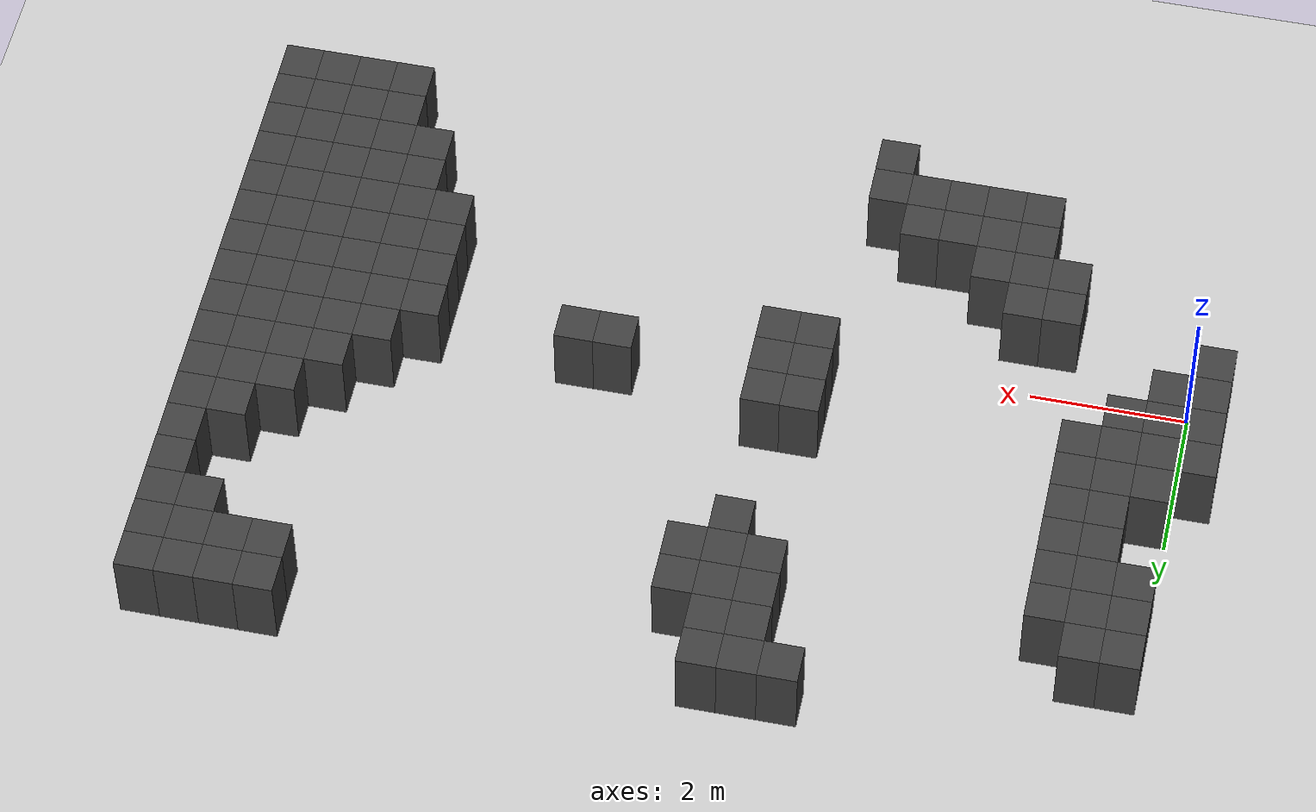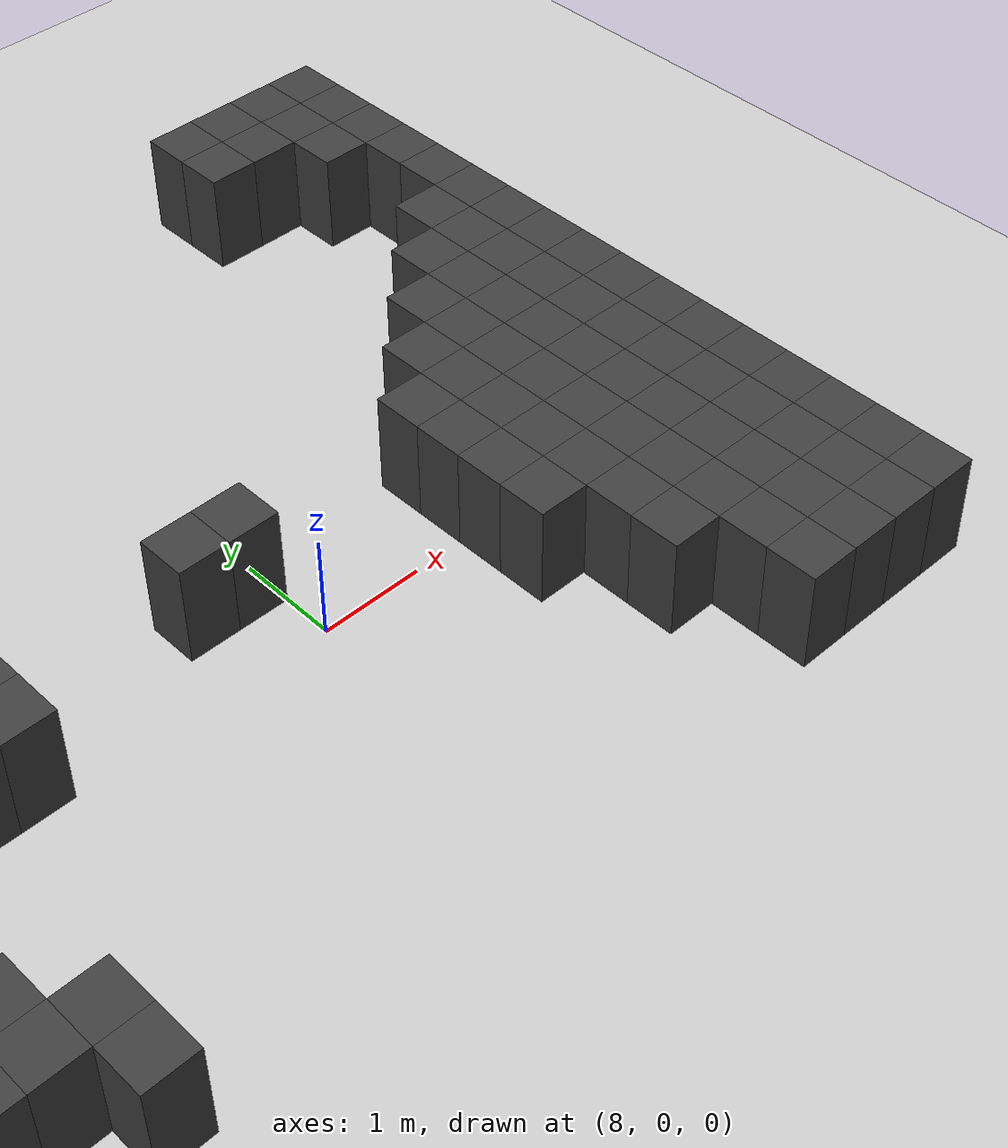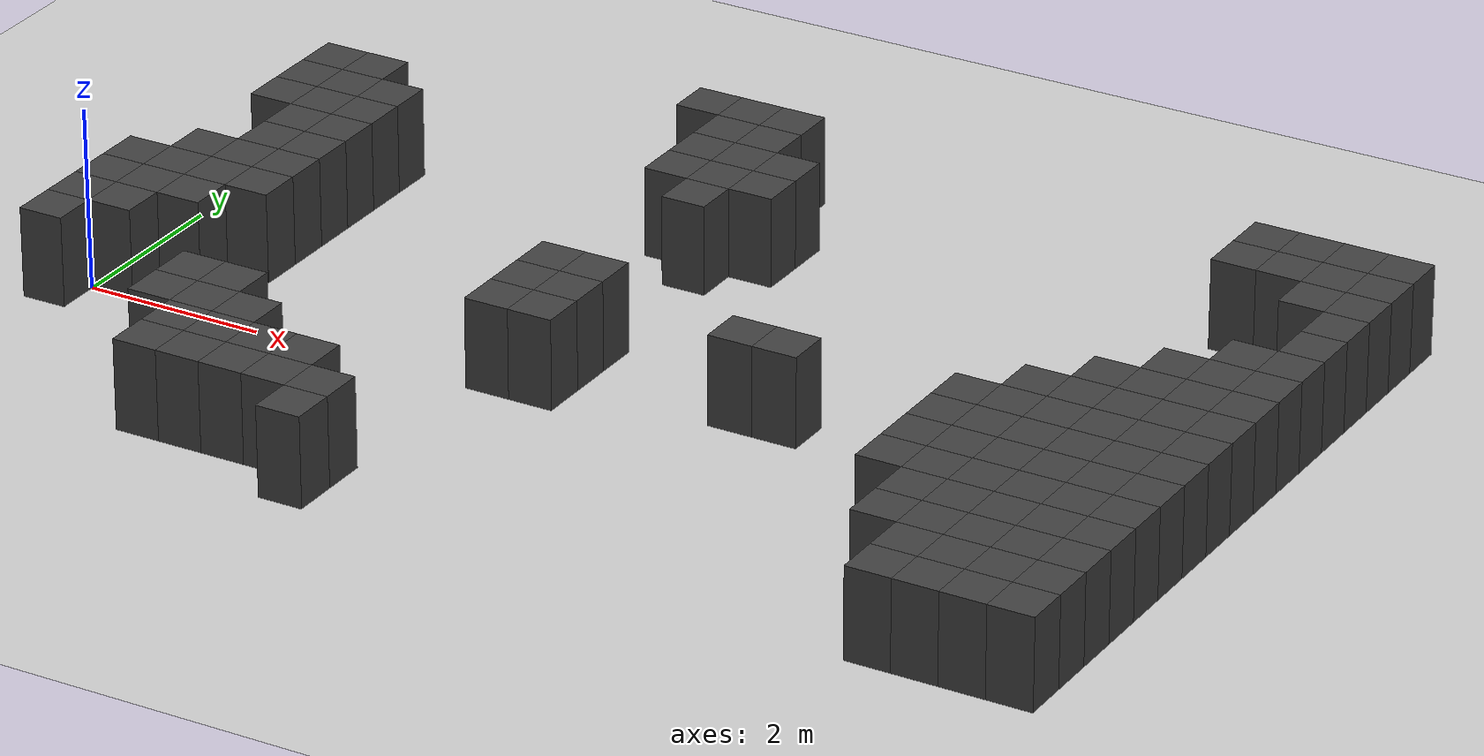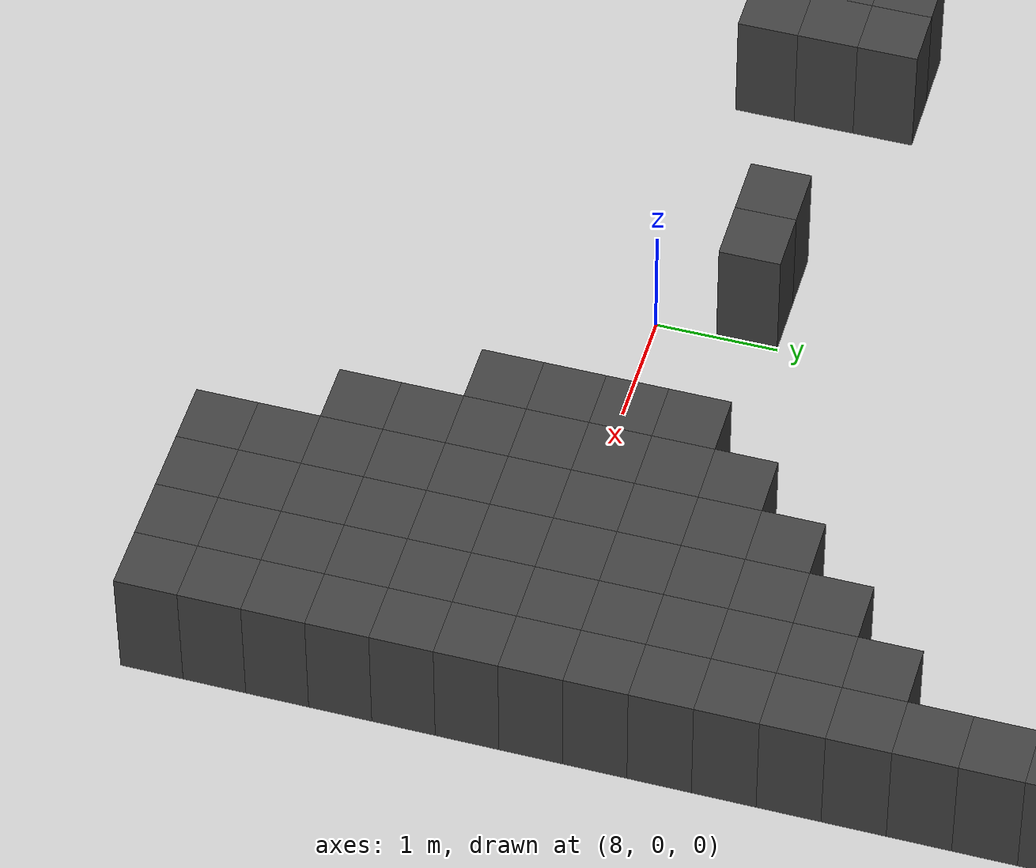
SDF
<sdf version="1.7">
 <world name="map_9544">
  <model name="ground_plane">
   <static>true</static>
   <link name="link">
    <collision name="collision">
     <geometry><plane><normal>0 0 1</normal><size>200 200</size></plane></geometry>
    </collision>
    <visual name="visual">
     <geometry><plane><normal>0 0 1</normal><size>200 200</size></plane></geometry>
     <material><ambient>0.8 0.8 0.8 1</ambient><diffuse>0.8 0.8 0.8 1</diffuse></material>
    </visual>
   </link>
  </model>
  <model name="maze_environment">
   <static>true</static>
   <link name="wall_237">
    <pose>4.250 5.250 0.500 0 0 0</pose>
    <collision name="col"><geometry><box><size>0.5 0.5 1.0</size></box></geometry></collision>
    <visual name="vis">
     <geometry><box><size>0.5 0.5 1.0</size></box></geometry>
     <material><ambient>0.15 0.15 0.15 1</ambient><diffuse>0.25 0.25 0.25 1</diffuse></material>
    </visual>
   </link>
   <link name="wall_238">
    <pose>4.750 5.250 0.500 0 0 0</pose>
    <collision name="col"><geometry><box><size>0.5 0.5 1.0</size></box></geometry></collision>
    <visual name="vis">
     <geometry><box><size>0.5 0.5 1.0</size></box></geometry>
     <material><ambient>0.15 0.15 0.15 1</ambient><diffuse>0.25 0.25 0.25 1</diffuse></material>
    </visual>
   </link>
   <link name="wall_239">
    <pose>5.250 5.250 0.500 0 0 0</pose>
    <collision name="col"><geometry><box><size>0.5 0.5 1.0</size></box></geometry></collision>
    <visual name="vis">
     <geometry><box><size>0.5 0.5 1.0</size></box></geometry>
     <material><ambient>0.15 0.15 0.15 1</ambient><diffuse>0.25 0.25 0.25 1</diffuse></material>
    </visual>
   </link>
   <link name="wall_240">
    <pose>10.750 5.250 0.500 0 0 0</pose>
    <collision name="col"><geometry><box><size>0.5 0.5 1.0</size></box></geometry></collision>
    <visual name="vis">
     <geometry><box><size>0.5 0.5 1.0</size></box></geometry>
     <material><ambient>0.15 0.15 0.15 1</ambient><diffuse>0.25 0.25 0.25 1</diffuse></material>
    </visual>
   </link>
   <link name="wall_241">
    <pose>11.250 5.250 0.500 0 0 0</pose>
    <collision name="col"><geometry><box><size>0.5 0.5 1.0</size></box></geometry></collision>
    <visual name="vis">
     <geometry><box><size>0.5 0.5 1.0</size></box></geometry>
     <material><ambient>0.15 0.15 0.15 1</ambient><diffuse>0.25 0.25 0.25 1</diffuse></material>
    </visual>
   </link>
   <link name="wall_242">
    <pose>11.750 5.250 0.500 0 0 0</pose>
    <collision name="col"><geometry><box><size>0.5 0.5 1.0</size></box></geometry></collision>
    <visual name="vis">
     <geometry><box><size>0.5 0.5 1.0</size></box></geometry>
     <material><ambient>0.15 0.15 0.15 1</ambient><diffuse>0.25 0.25 0.25 1</diffuse></material>
    </visual>
   </link>
   <link name="wall_243">
    <pose>12.250 5.250 0.500 0 0 0</pose>
    <collision name="col"><geometry><box><size>0.5 0.5 1.0</size></box></geometry></collision>
    <visual name="vis">
     <geometry><box><size>0.5 0.5 1.0</size></box></geometry>
     <material><ambient>0.15 0.15 0.15 1</ambient><diffuse>0.25 0.25 0.25 1</diffuse></material>
    </visual>
   </link>
   <link name="wall_260">
    <pose>4.750 4.750 0.500 0 0 0</pose>
    <collision name="col"><geometry><box><size>0.5 0.5 1.0</size></box></geometry></collision>
    <visual name="vis">
     <geometry><box><size>0.5 0.5 1.0</size></box></geometry>
     <material><ambient>0.15 0.15 0.15 1</ambient><diffuse>0.25 0.25 0.25 1</diffuse></material>
    </visual>
   </link>
   <link name="wall_261">
    <pose>5.250 4.750 0.500 0 0 0</pose>
    <collision name="col"><geometry><box><size>0.5 0.5 1.0</size></box></geometry></collision>
    <visual name="vis">
     <geometry><box><size>0.5 0.5 1.0</size></box></geometry>
     <material><ambient>0.15 0.15 0.15 1</ambient><diffuse>0.25 0.25 0.25 1</diffuse></material>
    </visual>
   </link>
   <link name="wall_262">
    <pose>10.750 4.750 0.500 0 0 0</pose>
    <collision name="col"><geometry><box><size>0.5 0.5 1.0</size></box></geometry></collision>
    <visual name="vis">
     <geometry><box><size>0.5 0.5 1.0</size></box></geometry>
     <material><ambient>0.15 0.15 0.15 1</ambient><diffuse>0.25 0.25 0.25 1</diffuse></material>
    </visual>
   </link>
   <link name="wall_263">
    <pose>11.250 4.750 0.500 0 0 0</pose>
    <collision name="col"><geometry><box><size>0.5 0.5 1.0</size></box></geometry></collision>
    <visual name="vis">
     <geometry><box><size>0.5 0.5 1.0</size></box></geometry>
     <material><ambient>0.15 0.15 0.15 1</ambient><diffuse>0.25 0.25 0.25 1</diffuse></material>
    </visual>
   </link>
   <link name="wall_264">
    <pose>11.750 4.750 0.500 0 0 0</pose>
    <collision name="col"><geometry><box><size>0.5 0.5 1.0</size></box></geometry></collision>
    <visual name="vis">
     <geometry><box><size>0.5 0.5 1.0</size></box></geometry>
     <material><ambient>0.15 0.15 0.15 1</ambient><diffuse>0.25 0.25 0.25 1</diffuse></material>
    </visual>
   </link>
   <link name="wall_265">
    <pose>12.250 4.750 0.500 0 0 0</pose>
    <collision name="col"><geometry><box><size>0.5 0.5 1.0</size></box></geometry></collision>
    <visual name="vis">
     <geometry><box><size>0.5 0.5 1.0</size></box></geometry>
     <material><ambient>0.15 0.15 0.15 1</ambient><diffuse>0.25 0.25 0.25 1</diffuse></material>
    </visual>
   </link>
   <link name="wall_278">
    <pose>0.250 4.250 0.500 0 0 0</pose>
    <collision name="col"><geometry><box><size>0.5 0.5 1.0</size></box></geometry></collision>
    <visual name="vis">
     <geometry><box><size>0.5 0.5 1.0</size></box></geometry>
     <material><ambient>0.15 0.15 0.15 1</ambient><diffuse>0.25 0.25 0.25 1</diffuse></material>
    </visual>
   </link>
   <link name="wall_279">
    <pose>0.750 4.250 0.500 0 0 0</pose>
    <collision name="col"><geometry><box><size>0.5 0.5 1.0</size></box></geometry></collision>
    <visual name="vis">
     <geometry><box><size>0.5 0.5 1.0</size></box></geometry>
     <material><ambient>0.15 0.15 0.15 1</ambient><diffuse>0.25 0.25 0.25 1</diffuse></material>
    </visual>
   </link>
   <link name="wall_280">
    <pose>4.750 4.250 0.500 0 0 0</pose>
    <collision name="col"><geometry><box><size>0.5 0.5 1.0</size></box></geometry></collision>
    <visual name="vis">
     <geometry><box><size>0.5 0.5 1.0</size></box></geometry>
     <material><ambient>0.15 0.15 0.15 1</ambient><diffuse>0.25 0.25 0.25 1</diffuse></material>
    </visual>
   </link>
   <link name="wall_281">
    <pose>5.250 4.250 0.500 0 0 0</pose>
    <collision name="col"><geometry><box><size>0.5 0.5 1.0</size></box></geometry></collision>
    <visual name="vis">
     <geometry><box><size>0.5 0.5 1.0</size></box></geometry>
     <material><ambient>0.15 0.15 0.15 1</ambient><diffuse>0.25 0.25 0.25 1</diffuse></material>
    </visual>
   </link>
   <link name="wall_282">
    <pose>5.750 4.250 0.500 0 0 0</pose>
    <collision name="col"><geometry><box><size>0.5 0.5 1.0</size></box></geometry></collision>
    <visual name="vis">
     <geometry><box><size>0.5 0.5 1.0</size></box></geometry>
     <material><ambient>0.15 0.15 0.15 1</ambient><diffuse>0.25 0.25 0.25 1</diffuse></material>
    </visual>
   </link>
   <link name="wall_283">
    <pose>11.750 4.250 0.500 0 0 0</pose>
    <collision name="col"><geometry><box><size>0.5 0.5 1.0</size></box></geometry></collision>
    <visual name="vis">
     <geometry><box><size>0.5 0.5 1.0</size></box></geometry>
     <material><ambient>0.15 0.15 0.15 1</ambient><diffuse>0.25 0.25 0.25 1</diffuse></material>
    </visual>
   </link>
   <link name="wall_284">
    <pose>12.250 4.250 0.500 0 0 0</pose>
    <collision name="col"><geometry><box><size>0.5 0.5 1.0</size></box></geometry></collision>
    <visual name="vis">
     <geometry><box><size>0.5 0.5 1.0</size></box></geometry>
     <material><ambient>0.15 0.15 0.15 1</ambient><diffuse>0.25 0.25 0.25 1</diffuse></material>
    </visual>
   </link>
   <link name="wall_294">
    <pose>0.250 3.750 0.500 0 0 0</pose>
    <collision name="col"><geometry><box><size>0.5 0.5 1.0</size></box></geometry></collision>
    <visual name="vis">
     <geometry><box><size>0.5 0.5 1.0</size></box></geometry>
     <material><ambient>0.15 0.15 0.15 1</ambient><diffuse>0.25 0.25 0.25 1</diffuse></material>
    </visual>
   </link>
   <link name="wall_295">
    <pose>0.750 3.750 0.500 0 0 0</pose>
    <collision name="col"><geometry><box><size>0.5 0.5 1.0</size></box></geometry></collision>
    <visual name="vis">
     <geometry><box><size>0.5 0.5 1.0</size></box></geometry>
     <material><ambient>0.15 0.15 0.15 1</ambient><diffuse>0.25 0.25 0.25 1</diffuse></material>
    </visual>
   </link>
   <link name="wall_296">
    <pose>1.250 3.750 0.500 0 0 0</pose>
    <collision name="col"><geometry><box><size>0.5 0.5 1.0</size></box></geometry></collision>
    <visual name="vis">
     <geometry><box><size>0.5 0.5 1.0</size></box></geometry>
     <material><ambient>0.15 0.15 0.15 1</ambient><diffuse>0.25 0.25 0.25 1</diffuse></material>
    </visual>
   </link>
   <link name="wall_297">
    <pose>4.750 3.750 0.500 0 0 0</pose>
    <collision name="col"><geometry><box><size>0.5 0.5 1.0</size></box></geometry></collision>
    <visual name="vis">
     <geometry><box><size>0.5 0.5 1.0</size></box></geometry>
     <material><ambient>0.15 0.15 0.15 1</ambient><diffuse>0.25 0.25 0.25 1</diffuse></material>
    </visual>
   </link>
   <link name="wall_298">
    <pose>5.250 3.750 0.500 0 0 0</pose>
    <collision name="col"><geometry><box><size>0.5 0.5 1.0</size></box></geometry></collision>
    <visual name="vis">
     <geometry><box><size>0.5 0.5 1.0</size></box></geometry>
     <material><ambient>0.15 0.15 0.15 1</ambient><diffuse>0.25 0.25 0.25 1</diffuse></material>
    </visual>
   </link>
   <link name="wall_299">
    <pose>5.750 3.750 0.500 0 0 0</pose>
    <collision name="col"><geometry><box><size>0.5 0.5 1.0</size></box></geometry></collision>
    <visual name="vis">
     <geometry><box><size>0.5 0.5 1.0</size></box></geometry>
     <material><ambient>0.15 0.15 0.15 1</ambient><diffuse>0.25 0.25 0.25 1</diffuse></material>
    </visual>
   </link>
   <link name="wall_300">
    <pose>12.250 3.750 0.500 0 0 0</pose>
    <collision name="col"><geometry><box><size>0.5 0.5 1.0</size></box></geometry></collision>
    <visual name="vis">
     <geometry><box><size>0.5 0.5 1.0</size></box></geometry>
     <material><ambient>0.15 0.15 0.15 1</ambient><diffuse>0.25 0.25 0.25 1</diffuse></material>
    </visual>
   </link>
   <link name="wall_311">
    <pose>0.250 3.250 0.500 0 0 0</pose>
    <collision name="col"><geometry><box><size>0.5 0.5 1.0</size></box></geometry></collision>
    <visual name="vis">
     <geometry><box><size>0.5 0.5 1.0</size></box></geometry>
     <material><ambient>0.15 0.15 0.15 1</ambient><diffuse>0.25 0.25 0.25 1</diffuse></material>
    </visual>
   </link>
   <link name="wall_312">
    <pose>0.750 3.250 0.500 0 0 0</pose>
    <collision name="col"><geometry><box><size>0.5 0.5 1.0</size></box></geometry></collision>
    <visual name="vis">
     <geometry><box><size>0.5 0.5 1.0</size></box></geometry>
     <material><ambient>0.15 0.15 0.15 1</ambient><diffuse>0.25 0.25 0.25 1</diffuse></material>
    </visual>
   </link>
   <link name="wall_313">
    <pose>1.250 3.250 0.500 0 0 0</pose>
    <collision name="col"><geometry><box><size>0.5 0.5 1.0</size></box></geometry></collision>
    <visual name="vis">
     <geometry><box><size>0.5 0.5 1.0</size></box></geometry>
     <material><ambient>0.15 0.15 0.15 1</ambient><diffuse>0.25 0.25 0.25 1</diffuse></material>
    </visual>
   </link>
   <link name="wall_314">
    <pose>5.250 3.250 0.500 0 0 0</pose>
    <collision name="col"><geometry><box><size>0.5 0.5 1.0</size></box></geometry></collision>
    <visual name="vis">
     <geometry><box><size>0.5 0.5 1.0</size></box></geometry>
     <material><ambient>0.15 0.15 0.15 1</ambient><diffuse>0.25 0.25 0.25 1</diffuse></material>
    </visual>
   </link>
   <link name="wall_315">
    <pose>12.250 3.250 0.500 0 0 0</pose>
    <collision name="col"><geometry><box><size>0.5 0.5 1.0</size></box></geometry></collision>
    <visual name="vis">
     <geometry><box><size>0.5 0.5 1.0</size></box></geometry>
     <material><ambient>0.15 0.15 0.15 1</ambient><diffuse>0.25 0.25 0.25 1</diffuse></material>
    </visual>
   </link>
   <link name="wall_333">
    <pose>0.750 2.750 0.500 0 0 0</pose>
    <collision name="col"><geometry><box><size>0.5 0.5 1.0</size></box></geometry></collision>
    <visual name="vis">
     <geometry><box><size>0.5 0.5 1.0</size></box></geometry>
     <material><ambient>0.15 0.15 0.15 1</ambient><diffuse>0.25 0.25 0.25 1</diffuse></material>
    </visual>
   </link>
   <link name="wall_334">
    <pose>1.250 2.750 0.500 0 0 0</pose>
    <collision name="col"><geometry><box><size>0.5 0.5 1.0</size></box></geometry></collision>
    <visual name="vis">
     <geometry><box><size>0.5 0.5 1.0</size></box></geometry>
     <material><ambient>0.15 0.15 0.15 1</ambient><diffuse>0.25 0.25 0.25 1</diffuse></material>
    </visual>
   </link>
   <link name="wall_335">
    <pose>11.750 2.750 0.500 0 0 0</pose>
    <collision name="col"><geometry><box><size>0.5 0.5 1.0</size></box></geometry></collision>
    <visual name="vis">
     <geometry><box><size>0.5 0.5 1.0</size></box></geometry>
     <material><ambient>0.15 0.15 0.15 1</ambient><diffuse>0.25 0.25 0.25 1</diffuse></material>
    </visual>
   </link>
   <link name="wall_336">
    <pose>12.250 2.750 0.500 0 0 0</pose>
    <collision name="col"><geometry><box><size>0.5 0.5 1.0</size></box></geometry></collision>
    <visual name="vis">
     <geometry><box><size>0.5 0.5 1.0</size></box></geometry>
     <material><ambient>0.15 0.15 0.15 1</ambient><diffuse>0.25 0.25 0.25 1</diffuse></material>
    </visual>
   </link>
   <link name="wall_352">
    <pose>0.750 2.250 0.500 0 0 0</pose>
    <collision name="col"><geometry><box><size>0.5 0.5 1.0</size></box></geometry></collision>
    <visual name="vis">
     <geometry><box><size>0.5 0.5 1.0</size></box></geometry>
     <material><ambient>0.15 0.15 0.15 1</ambient><diffuse>0.25 0.25 0.25 1</diffuse></material>
    </visual>
   </link>
   <link name="wall_353">
    <pose>1.250 2.250 0.500 0 0 0</pose>
    <collision name="col"><geometry><box><size>0.5 0.5 1.0</size></box></geometry></collision>
    <visual name="vis">
     <geometry><box><size>0.5 0.5 1.0</size></box></geometry>
     <material><ambient>0.15 0.15 0.15 1</ambient><diffuse>0.25 0.25 0.25 1</diffuse></material>
    </visual>
   </link>
   <link name="wall_354">
    <pose>11.250 2.250 0.500 0 0 0</pose>
    <collision name="col"><geometry><box><size>0.5 0.5 1.0</size></box></geometry></collision>
    <visual name="vis">
     <geometry><box><size>0.5 0.5 1.0</size></box></geometry>
     <material><ambient>0.15 0.15 0.15 1</ambient><diffuse>0.25 0.25 0.25 1</diffuse></material>
    </visual>
   </link>
   <link name="wall_355">
    <pose>11.750 2.250 0.500 0 0 0</pose>
    <collision name="col"><geometry><box><size>0.5 0.5 1.0</size></box></geometry></collision>
    <visual name="vis">
     <geometry><box><size>0.5 0.5 1.0</size></box></geometry>
     <material><ambient>0.15 0.15 0.15 1</ambient><diffuse>0.25 0.25 0.25 1</diffuse></material>
    </visual>
   </link>
   <link name="wall_356">
    <pose>12.250 2.250 0.500 0 0 0</pose>
    <collision name="col"><geometry><box><size>0.5 0.5 1.0</size></box></geometry></collision>
    <visual name="vis">
     <geometry><box><size>0.5 0.5 1.0</size></box></geometry>
     <material><ambient>0.15 0.15 0.15 1</ambient><diffuse>0.25 0.25 0.25 1</diffuse></material>
    </visual>
   </link>
   <link name="wall_368">
    <pose>0.250 1.750 0.500 0 0 0</pose>
    <collision name="col"><geometry><box><size>0.5 0.5 1.0</size></box></geometry></collision>
    <visual name="vis">
     <geometry><box><size>0.5 0.5 1.0</size></box></geometry>
     <material><ambient>0.15 0.15 0.15 1</ambient><diffuse>0.25 0.25 0.25 1</diffuse></material>
    </visual>
   </link>
   <link name="wall_369">
    <pose>0.750 1.750 0.500 0 0 0</pose>
    <collision name="col"><geometry><box><size>0.5 0.5 1.0</size></box></geometry></collision>
    <visual name="vis">
     <geometry><box><size>0.5 0.5 1.0</size></box></geometry>
     <material><ambient>0.15 0.15 0.15 1</ambient><diffuse>0.25 0.25 0.25 1</diffuse></material>
    </visual>
   </link>
   <link name="wall_370">
    <pose>1.250 1.750 0.500 0 0 0</pose>
    <collision name="col"><geometry><box><size>0.5 0.5 1.0</size></box></geometry></collision>
    <visual name="vis">
     <geometry><box><size>0.5 0.5 1.0</size></box></geometry>
     <material><ambient>0.15 0.15 0.15 1</ambient><diffuse>0.25 0.25 0.25 1</diffuse></material>
    </visual>
   </link>
   <link name="wall_371">
    <pose>10.750 1.750 0.500 0 0 0</pose>
    <collision name="col"><geometry><box><size>0.5 0.5 1.0</size></box></geometry></collision>
    <visual name="vis">
     <geometry><box><size>0.5 0.5 1.0</size></box></geometry>
     <material><ambient>0.15 0.15 0.15 1</ambient><diffuse>0.25 0.25 0.25 1</diffuse></material>
    </visual>
   </link>
   <link name="wall_372">
    <pose>11.250 1.750 0.500 0 0 0</pose>
    <collision name="col"><geometry><box><size>0.5 0.5 1.0</size></box></geometry></collision>
    <visual name="vis">
     <geometry><box><size>0.5 0.5 1.0</size></box></geometry>
     <material><ambient>0.15 0.15 0.15 1</ambient><diffuse>0.25 0.25 0.25 1</diffuse></material>
    </visual>
   </link>
   <link name="wall_373">
    <pose>11.750 1.750 0.500 0 0 0</pose>
    <collision name="col"><geometry><box><size>0.5 0.5 1.0</size></box></geometry></collision>
    <visual name="vis">
     <geometry><box><size>0.5 0.5 1.0</size></box></geometry>
     <material><ambient>0.15 0.15 0.15 1</ambient><diffuse>0.25 0.25 0.25 1</diffuse></material>
    </visual>
   </link>
   <link name="wall_374">
    <pose>12.250 1.750 0.500 0 0 0</pose>
    <collision name="col"><geometry><box><size>0.5 0.5 1.0</size></box></geometry></collision>
    <visual name="vis">
     <geometry><box><size>0.5 0.5 1.0</size></box></geometry>
     <material><ambient>0.15 0.15 0.15 1</ambient><diffuse>0.25 0.25 0.25 1</diffuse></material>
    </visual>
   </link>
   <link name="wall_383">
    <pose>-0.250 1.250 0.500 0 0 0</pose>
    <collision name="col"><geometry><box><size>0.5 0.5 1.0</size></box></geometry></collision>
    <visual name="vis">
     <geometry><box><size>0.5 0.5 1.0</size></box></geometry>
     <material><ambient>0.15 0.15 0.15 1</ambient><diffuse>0.25 0.25 0.25 1</diffuse></material>
    </visual>
   </link>
   <link name="wall_384">
    <pose>0.250 1.250 0.500 0 0 0</pose>
    <collision name="col"><geometry><box><size>0.5 0.5 1.0</size></box></geometry></collision>
    <visual name="vis">
     <geometry><box><size>0.5 0.5 1.0</size></box></geometry>
     <material><ambient>0.15 0.15 0.15 1</ambient><diffuse>0.25 0.25 0.25 1</diffuse></material>
    </visual>
   </link>
   <link name="wall_385">
    <pose>0.750 1.250 0.500 0 0 0</pose>
    <collision name="col"><geometry><box><size>0.5 0.5 1.0</size></box></geometry></collision>
    <visual name="vis">
     <geometry><box><size>0.5 0.5 1.0</size></box></geometry>
     <material><ambient>0.15 0.15 0.15 1</ambient><diffuse>0.25 0.25 0.25 1</diffuse></material>
    </visual>
   </link>
   <link name="wall_386">
    <pose>1.250 1.250 0.500 0 0 0</pose>
    <collision name="col"><geometry><box><size>0.5 0.5 1.0</size></box></geometry></collision>
    <visual name="vis">
     <geometry><box><size>0.5 0.5 1.0</size></box></geometry>
     <material><ambient>0.15 0.15 0.15 1</ambient><diffuse>0.25 0.25 0.25 1</diffuse></material>
    </visual>
   </link>
   <link name="wall_387">
    <pose>4.750 1.250 0.500 0 0 0</pose>
    <collision name="col"><geometry><box><size>0.5 0.5 1.0</size></box></geometry></collision>
    <visual name="vis">
     <geometry><box><size>0.5 0.5 1.0</size></box></geometry>
     <material><ambient>0.15 0.15 0.15 1</ambient><diffuse>0.25 0.25 0.25 1</diffuse></material>
    </visual>
   </link>
   <link name="wall_388">
    <pose>5.250 1.250 0.500 0 0 0</pose>
    <collision name="col"><geometry><box><size>0.5 0.5 1.0</size></box></geometry></collision>
    <visual name="vis">
     <geometry><box><size>0.5 0.5 1.0</size></box></geometry>
     <material><ambient>0.15 0.15 0.15 1</ambient><diffuse>0.25 0.25 0.25 1</diffuse></material>
    </visual>
   </link>
   <link name="wall_389">
    <pose>10.250 1.250 0.500 0 0 0</pose>
    <collision name="col"><geometry><box><size>0.5 0.5 1.0</size></box></geometry></collision>
    <visual name="vis">
     <geometry><box><size>0.5 0.5 1.0</size></box></geometry>
     <material><ambient>0.15 0.15 0.15 1</ambient><diffuse>0.25 0.25 0.25 1</diffuse></material>
    </visual>
   </link>
   <link name="wall_390">
    <pose>10.750 1.250 0.500 0 0 0</pose>
    <collision name="col"><geometry><box><size>0.5 0.5 1.0</size></box></geometry></collision>
    <visual name="vis">
     <geometry><box><size>0.5 0.5 1.0</size></box></geometry>
     <material><ambient>0.15 0.15 0.15 1</ambient><diffuse>0.25 0.25 0.25 1</diffuse></material>
    </visual>
   </link>
   <link name="wall_391">
    <pose>11.250 1.250 0.500 0 0 0</pose>
    <collision name="col"><geometry><box><size>0.5 0.5 1.0</size></box></geometry></collision>
    <visual name="vis">
     <geometry><box><size>0.5 0.5 1.0</size></box></geometry>
     <material><ambient>0.15 0.15 0.15 1</ambient><diffuse>0.25 0.25 0.25 1</diffuse></material>
    </visual>
   </link>
   <link name="wall_392">
    <pose>11.750 1.250 0.500 0 0 0</pose>
    <collision name="col"><geometry><box><size>0.5 0.5 1.0</size></box></geometry></collision>
    <visual name="vis">
     <geometry><box><size>0.5 0.5 1.0</size></box></geometry>
     <material><ambient>0.15 0.15 0.15 1</ambient><diffuse>0.25 0.25 0.25 1</diffuse></material>
    </visual>
   </link>
   <link name="wall_393">
    <pose>12.250 1.250 0.500 0 0 0</pose>
    <collision name="col"><geometry><box><size>0.5 0.5 1.0</size></box></geometry></collision>
    <visual name="vis">
     <geometry><box><size>0.5 0.5 1.0</size></box></geometry>
     <material><ambient>0.15 0.15 0.15 1</ambient><diffuse>0.25 0.25 0.25 1</diffuse></material>
    </visual>
   </link>
   <link name="wall_399">
    <pose>-0.250 0.750 0.500 0 0 0</pose>
    <collision name="col"><geometry><box><size>0.5 0.5 1.0</size></box></geometry></collision>
    <visual name="vis">
     <geometry><box><size>0.5 0.5 1.0</size></box></geometry>
     <material><ambient>0.15 0.15 0.15 1</ambient><diffuse>0.25 0.25 0.25 1</diffuse></material>
    </visual>
   </link>
   <link name="wall_400">
    <pose>0.250 0.750 0.500 0 0 0</pose>
    <collision name="col"><geometry><box><size>0.5 0.5 1.0</size></box></geometry></collision>
    <visual name="vis">
     <geometry><box><size>0.5 0.5 1.0</size></box></geometry>
     <material><ambient>0.15 0.15 0.15 1</ambient><diffuse>0.25 0.25 0.25 1</diffuse></material>
    </visual>
   </link>
   <link name="wall_401">
    <pose>0.750 0.750 0.500 0 0 0</pose>
    <collision name="col"><geometry><box><size>0.5 0.5 1.0</size></box></geometry></collision>
    <visual name="vis">
     <geometry><box><size>0.5 0.5 1.0</size></box></geometry>
     <material><ambient>0.15 0.15 0.15 1</ambient><diffuse>0.25 0.25 0.25 1</diffuse></material>
    </visual>
   </link>
   <link name="wall_402">
    <pose>4.750 0.750 0.500 0 0 0</pose>
    <collision name="col"><geometry><box><size>0.5 0.5 1.0</size></box></geometry></collision>
    <visual name="vis">
     <geometry><box><size>0.5 0.5 1.0</size></box></geometry>
     <material><ambient>0.15 0.15 0.15 1</ambient><diffuse>0.25 0.25 0.25 1</diffuse></material>
    </visual>
   </link>
   <link name="wall_403">
    <pose>5.250 0.750 0.500 0 0 0</pose>
    <collision name="col"><geometry><box><size>0.5 0.5 1.0</size></box></geometry></collision>
    <visual name="vis">
     <geometry><box><size>0.5 0.5 1.0</size></box></geometry>
     <material><ambient>0.15 0.15 0.15 1</ambient><diffuse>0.25 0.25 0.25 1</diffuse></material>
    </visual>
   </link>
   <link name="wall_404">
    <pose>7.250 0.750 0.500 0 0 0</pose>
    <collision name="col"><geometry><box><size>0.5 0.5 1.0</size></box></geometry></collision>
    <visual name="vis">
     <geometry><box><size>0.5 0.5 1.0</size></box></geometry>
     <material><ambient>0.15 0.15 0.15 1</ambient><diffuse>0.25 0.25 0.25 1</diffuse></material>
    </visual>
   </link>
   <link name="wall_405">
    <pose>7.750 0.750 0.500 0 0 0</pose>
    <collision name="col"><geometry><box><size>0.5 0.5 1.0</size></box></geometry></collision>
    <visual name="vis">
     <geometry><box><size>0.5 0.5 1.0</size></box></geometry>
     <material><ambient>0.15 0.15 0.15 1</ambient><diffuse>0.25 0.25 0.25 1</diffuse></material>
    </visual>
   </link>
   <link name="wall_406">
    <pose>9.750 0.750 0.500 0 0 0</pose>
    <collision name="col"><geometry><box><size>0.5 0.5 1.0</size></box></geometry></collision>
    <visual name="vis">
     <geometry><box><size>0.5 0.5 1.0</size></box></geometry>
     <material><ambient>0.15 0.15 0.15 1</ambient><diffuse>0.25 0.25 0.25 1</diffuse></material>
    </visual>
   </link>
   <link name="wall_407">
    <pose>10.250 0.750 0.500 0 0 0</pose>
    <collision name="col"><geometry><box><size>0.5 0.5 1.0</size></box></geometry></collision>
    <visual name="vis">
     <geometry><box><size>0.5 0.5 1.0</size></box></geometry>
     <material><ambient>0.15 0.15 0.15 1</ambient><diffuse>0.25 0.25 0.25 1</diffuse></material>
    </visual>
   </link>
   <link name="wall_408">
    <pose>10.750 0.750 0.500 0 0 0</pose>
    <collision name="col"><geometry><box><size>0.5 0.5 1.0</size></box></geometry></collision>
    <visual name="vis">
     <geometry><box><size>0.5 0.5 1.0</size></box></geometry>
     <material><ambient>0.15 0.15 0.15 1</ambient><diffuse>0.25 0.25 0.25 1</diffuse></material>
    </visual>
   </link>
   <link name="wall_409">
    <pose>11.250 0.750 0.500 0 0 0</pose>
    <collision name="col"><geometry><box><size>0.5 0.5 1.0</size></box></geometry></collision>
    <visual name="vis">
     <geometry><box><size>0.5 0.5 1.0</size></box></geometry>
     <material><ambient>0.15 0.15 0.15 1</ambient><diffuse>0.25 0.25 0.25 1</diffuse></material>
    </visual>
   </link>
   <link name="wall_410">
    <pose>11.750 0.750 0.500 0 0 0</pose>
    <collision name="col"><geometry><box><size>0.5 0.5 1.0</size></box></geometry></collision>
    <visual name="vis">
     <geometry><box><size>0.5 0.5 1.0</size></box></geometry>
     <material><ambient>0.15 0.15 0.15 1</ambient><diffuse>0.25 0.25 0.25 1</diffuse></material>
    </visual>
   </link>
   <link name="wall_411">
    <pose>12.250 0.750 0.500 0 0 0</pose>
    <collision name="col"><geometry><box><size>0.5 0.5 1.0</size></box></geometry></collision>
    <visual name="vis">
     <geometry><box><size>0.5 0.5 1.0</size></box></geometry>
     <material><ambient>0.15 0.15 0.15 1</ambient><diffuse>0.25 0.25 0.25 1</diffuse></material>
    </visual>
   </link>
   <link name="wall_418">
    <pose>-0.250 0.250 0.500 0 0 0</pose>
    <collision name="col"><geometry><box><size>0.5 0.5 1.0</size></box></geometry></collision>
    <visual name="vis">
     <geometry><box><size>0.5 0.5 1.0</size></box></geometry>
     <material><ambient>0.15 0.15 0.15 1</ambient><diffuse>0.25 0.25 0.25 1</diffuse></material>
    </visual>
   </link>
   <link name="wall_419">
    <pose>0.250 0.250 0.500 0 0 0</pose>
    <collision name="col"><geometry><box><size>0.5 0.5 1.0</size></box></geometry></collision>
    <visual name="vis">
     <geometry><box><size>0.5 0.5 1.0</size></box></geometry>
     <material><ambient>0.15 0.15 0.15 1</ambient><diffuse>0.25 0.25 0.25 1</diffuse></material>
    </visual>
   </link>
   <link name="wall_420">
    <pose>4.750 0.250 0.500 0 0 0</pose>
    <collision name="col"><geometry><box><size>0.5 0.5 1.0</size></box></geometry></collision>
    <visual name="vis">
     <geometry><box><size>0.5 0.5 1.0</size></box></geometry>
     <material><ambient>0.15 0.15 0.15 1</ambient><diffuse>0.25 0.25 0.25 1</diffuse></material>
    </visual>
   </link>
   <link name="wall_421">
    <pose>5.250 0.250 0.500 0 0 0</pose>
    <collision name="col"><geometry><box><size>0.5 0.5 1.0</size></box></geometry></collision>
    <visual name="vis">
     <geometry><box><size>0.5 0.5 1.0</size></box></geometry>
     <material><ambient>0.15 0.15 0.15 1</ambient><diffuse>0.25 0.25 0.25 1</diffuse></material>
    </visual>
   </link>
   <link name="wall_422">
    <pose>9.750 0.250 0.500 0 0 0</pose>
    <collision name="col"><geometry><box><size>0.5 0.5 1.0</size></box></geometry></collision>
    <visual name="vis">
     <geometry><box><size>0.5 0.5 1.0</size></box></geometry>
     <material><ambient>0.15 0.15 0.15 1</ambient><diffuse>0.25 0.25 0.25 1</diffuse></material>
    </visual>
   </link>
   <link name="wall_423">
    <pose>10.250 0.250 0.500 0 0 0</pose>
    <collision name="col"><geometry><box><size>0.5 0.5 1.0</size></box></geometry></collision>
    <visual name="vis">
     <geometry><box><size>0.5 0.5 1.0</size></box></geometry>
     <material><ambient>0.15 0.15 0.15 1</ambient><diffuse>0.25 0.25 0.25 1</diffuse></material>
    </visual>
   </link>
   <link name="wall_424">
    <pose>10.750 0.250 0.500 0 0 0</pose>
    <collision name="col"><geometry><box><size>0.5 0.5 1.0</size></box></geometry></collision>
    <visual name="vis">
     <geometry><box><size>0.5 0.5 1.0</size></box></geometry>
     <material><ambient>0.15 0.15 0.15 1</ambient><diffuse>0.25 0.25 0.25 1</diffuse></material>
    </visual>
   </link>
   <link name="wall_425">
    <pose>11.250 0.250 0.500 0 0 0</pose>
    <collision name="col"><geometry><box><size>0.5 0.5 1.0</size></box></geometry></collision>
    <visual name="vis">
     <geometry><box><size>0.5 0.5 1.0</size></box></geometry>
     <material><ambient>0.15 0.15 0.15 1</ambient><diffuse>0.25 0.25 0.25 1</diffuse></material>
    </visual>
   </link>
   <link name="wall_426">
    <pose>11.750 0.250 0.500 0 0 0</pose>
    <collision name="col"><geometry><box><size>0.5 0.5 1.0</size></box></geometry></collision>
    <visual name="vis">
     <geometry><box><size>0.5 0.5 1.0</size></box></geometry>
     <material><ambient>0.15 0.15 0.15 1</ambient><diffuse>0.25 0.25 0.25 1</diffuse></material>
    </visual>
   </link>
   <link name="wall_427">
    <pose>12.250 0.250 0.500 0 0 0</pose>
    <collision name="col"><geometry><box><size>0.5 0.5 1.0</size></box></geometry></collision>
    <visual name="vis">
     <geometry><box><size>0.5 0.5 1.0</size></box></geometry>
     <material><ambient>0.15 0.15 0.15 1</ambient><diffuse>0.25 0.25 0.25 1</diffuse></material>
    </visual>
   </link>
   <link name="wall_435">
    <pose>-0.250 -0.250 0.500 0 0 0</pose>
    <collision name="col"><geometry><box><size>0.5 0.5 1.0</size></box></geometry></collision>
    <visual name="vis">
     <geometry><box><size>0.5 0.5 1.0</size></box></geometry>
     <material><ambient>0.15 0.15 0.15 1</ambient><diffuse>0.25 0.25 0.25 1</diffuse></material>
    </visual>
   </link>
   <link name="wall_436">
    <pose>9.750 -0.250 0.500 0 0 0</pose>
    <collision name="col"><geometry><box><size>0.5 0.5 1.0</size></box></geometry></collision>
    <visual name="vis">
     <geometry><box><size>0.5 0.5 1.0</size></box></geometry>
     <material><ambient>0.15 0.15 0.15 1</ambient><diffuse>0.25 0.25 0.25 1</diffuse></material>
    </visual>
   </link>
   <link name="wall_437">
    <pose>10.250 -0.250 0.500 0 0 0</pose>
    <collision name="col"><geometry><box><size>0.5 0.5 1.0</size></box></geometry></collision>
    <visual name="vis">
     <geometry><box><size>0.5 0.5 1.0</size></box></geometry>
     <material><ambient>0.15 0.15 0.15 1</ambient><diffuse>0.25 0.25 0.25 1</diffuse></material>
    </visual>
   </link>
   <link name="wall_438">
    <pose>10.750 -0.250 0.500 0 0 0</pose>
    <collision name="col"><geometry><box><size>0.5 0.5 1.0</size></box></geometry></collision>
    <visual name="vis">
     <geometry><box><size>0.5 0.5 1.0</size></box></geometry>
     <material><ambient>0.15 0.15 0.15 1</ambient><diffuse>0.25 0.25 0.25 1</diffuse></material>
    </visual>
   </link>
   <link name="wall_439">
    <pose>11.250 -0.250 0.500 0 0 0</pose>
    <collision name="col"><geometry><box><size>0.5 0.5 1.0</size></box></geometry></collision>
    <visual name="vis">
     <geometry><box><size>0.5 0.5 1.0</size></box></geometry>
     <material><ambient>0.15 0.15 0.15 1</ambient><diffuse>0.25 0.25 0.25 1</diffuse></material>
    </visual>
   </link>
   <link name="wall_440">
    <pose>11.750 -0.250 0.500 0 0 0</pose>
    <collision name="col"><geometry><box><size>0.5 0.5 1.0</size></box></geometry></collision>
    <visual name="vis">
     <geometry><box><size>0.5 0.5 1.0</size></box></geometry>
     <material><ambient>0.15 0.15 0.15 1</ambient><diffuse>0.25 0.25 0.25 1</diffuse></material>
    </visual>
   </link>
   <link name="wall_441">
    <pose>12.250 -0.250 0.500 0 0 0</pose>
    <collision name="col"><geometry><box><size>0.5 0.5 1.0</size></box></geometry></collision>
    <visual name="vis">
     <geometry><box><size>0.5 0.5 1.0</size></box></geometry>
     <material><ambient>0.15 0.15 0.15 1</ambient><diffuse>0.25 0.25 0.25 1</diffuse></material>
    </visual>
   </link>
   <link name="wall_448">
    <pose>1.750 -0.750 0.500 0 0 0</pose>
    <collision name="col"><geometry><box><size>0.5 0.5 1.0</size></box></geometry></collision>
    <visual name="vis">
     <geometry><box><size>0.5 0.5 1.0</size></box></geometry>
     <material><ambient>0.15 0.15 0.15 1</ambient><diffuse>0.25 0.25 0.25 1</diffuse></material>
    </visual>
   </link>
   <link name="wall_449">
    <pose>2.250 -0.750 0.500 0 0 0</pose>
    <collision name="col"><geometry><box><size>0.5 0.5 1.0</size></box></geometry></collision>
    <visual name="vis">
     <geometry><box><size>0.5 0.5 1.0</size></box></geometry>
     <material><ambient>0.15 0.15 0.15 1</ambient><diffuse>0.25 0.25 0.25 1</diffuse></material>
    </visual>
   </link>
   <link name="wall_450">
    <pose>9.750 -0.750 0.500 0 0 0</pose>
    <collision name="col"><geometry><box><size>0.5 0.5 1.0</size></box></geometry></collision>
    <visual name="vis">
     <geometry><box><size>0.5 0.5 1.0</size></box></geometry>
     <material><ambient>0.15 0.15 0.15 1</ambient><diffuse>0.25 0.25 0.25 1</diffuse></material>
    </visual>
   </link>
   <link name="wall_451">
    <pose>10.250 -0.750 0.500 0 0 0</pose>
    <collision name="col"><geometry><box><size>0.5 0.5 1.0</size></box></geometry></collision>
    <visual name="vis">
     <geometry><box><size>0.5 0.5 1.0</size></box></geometry>
     <material><ambient>0.15 0.15 0.15 1</ambient><diffuse>0.25 0.25 0.25 1</diffuse></material>
    </visual>
   </link>
   <link name="wall_452">
    <pose>10.750 -0.750 0.500 0 0 0</pose>
    <collision name="col"><geometry><box><size>0.5 0.5 1.0</size></box></geometry></collision>
    <visual name="vis">
     <geometry><box><size>0.5 0.5 1.0</size></box></geometry>
     <material><ambient>0.15 0.15 0.15 1</ambient><diffuse>0.25 0.25 0.25 1</diffuse></material>
    </visual>
   </link>
   <link name="wall_453">
    <pose>11.250 -0.750 0.500 0 0 0</pose>
    <collision name="col"><geometry><box><size>0.5 0.5 1.0</size></box></geometry></collision>
    <visual name="vis">
     <geometry><box><size>0.5 0.5 1.0</size></box></geometry>
     <material><ambient>0.15 0.15 0.15 1</ambient><diffuse>0.25 0.25 0.25 1</diffuse></material>
    </visual>
   </link>
   <link name="wall_454">
    <pose>11.750 -0.750 0.500 0 0 0</pose>
    <collision name="col"><geometry><box><size>0.5 0.5 1.0</size></box></geometry></collision>
    <visual name="vis">
     <geometry><box><size>0.5 0.5 1.0</size></box></geometry>
     <material><ambient>0.15 0.15 0.15 1</ambient><diffuse>0.25 0.25 0.25 1</diffuse></material>
    </visual>
   </link>
   <link name="wall_455">
    <pose>12.250 -0.750 0.500 0 0 0</pose>
    <collision name="col"><geometry><box><size>0.5 0.5 1.0</size></box></geometry></collision>
    <visual name="vis">
     <geometry><box><size>0.5 0.5 1.0</size></box></geometry>
     <material><ambient>0.15 0.15 0.15 1</ambient><diffuse>0.25 0.25 0.25 1</diffuse></material>
    </visual>
   </link>
   <link name="wall_462">
    <pose>1.750 -1.250 0.500 0 0 0</pose>
    <collision name="col"><geometry><box><size>0.5 0.5 1.0</size></box></geometry></collision>
    <visual name="vis">
     <geometry><box><size>0.5 0.5 1.0</size></box></geometry>
     <material><ambient>0.15 0.15 0.15 1</ambient><diffuse>0.25 0.25 0.25 1</diffuse></material>
    </visual>
   </link>
   <link name="wall_463">
    <pose>2.250 -1.250 0.500 0 0 0</pose>
    <collision name="col"><geometry><box><size>0.5 0.5 1.0</size></box></geometry></collision>
    <visual name="vis">
     <geometry><box><size>0.5 0.5 1.0</size></box></geometry>
     <material><ambient>0.15 0.15 0.15 1</ambient><diffuse>0.25 0.25 0.25 1</diffuse></material>
    </visual>
   </link>
   <link name="wall_464">
    <pose>2.750 -1.250 0.500 0 0 0</pose>
    <collision name="col"><geometry><box><size>0.5 0.5 1.0</size></box></geometry></collision>
    <visual name="vis">
     <geometry><box><size>0.5 0.5 1.0</size></box></geometry>
     <material><ambient>0.15 0.15 0.15 1</ambient><diffuse>0.25 0.25 0.25 1</diffuse></material>
    </visual>
   </link>
   <link name="wall_465">
    <pose>10.250 -1.250 0.500 0 0 0</pose>
    <collision name="col"><geometry><box><size>0.5 0.5 1.0</size></box></geometry></collision>
    <visual name="vis">
     <geometry><box><size>0.5 0.5 1.0</size></box></geometry>
     <material><ambient>0.15 0.15 0.15 1</ambient><diffuse>0.25 0.25 0.25 1</diffuse></material>
    </visual>
   </link>
   <link name="wall_466">
    <pose>10.750 -1.250 0.500 0 0 0</pose>
    <collision name="col"><geometry><box><size>0.5 0.5 1.0</size></box></geometry></collision>
    <visual name="vis">
     <geometry><box><size>0.5 0.5 1.0</size></box></geometry>
     <material><ambient>0.15 0.15 0.15 1</ambient><diffuse>0.25 0.25 0.25 1</diffuse></material>
    </visual>
   </link>
   <link name="wall_467">
    <pose>11.250 -1.250 0.500 0 0 0</pose>
    <collision name="col"><geometry><box><size>0.5 0.5 1.0</size></box></geometry></collision>
    <visual name="vis">
     <geometry><box><size>0.5 0.5 1.0</size></box></geometry>
     <material><ambient>0.15 0.15 0.15 1</ambient><diffuse>0.25 0.25 0.25 1</diffuse></material>
    </visual>
   </link>
   <link name="wall_468">
    <pose>11.750 -1.250 0.500 0 0 0</pose>
    <collision name="col"><geometry><box><size>0.5 0.5 1.0</size></box></geometry></collision>
    <visual name="vis">
     <geometry><box><size>0.5 0.5 1.0</size></box></geometry>
     <material><ambient>0.15 0.15 0.15 1</ambient><diffuse>0.25 0.25 0.25 1</diffuse></material>
    </visual>
   </link>
   <link name="wall_469">
    <pose>12.250 -1.250 0.500 0 0 0</pose>
    <collision name="col"><geometry><box><size>0.5 0.5 1.0</size></box></geometry></collision>
    <visual name="vis">
     <geometry><box><size>0.5 0.5 1.0</size></box></geometry>
     <material><ambient>0.15 0.15 0.15 1</ambient><diffuse>0.25 0.25 0.25 1</diffuse></material>
    </visual>
   </link>
   <link name="wall_475">
    <pose>2.250 -1.750 0.500 0 0 0</pose>
    <collision name="col"><geometry><box><size>0.5 0.5 1.0</size></box></geometry></collision>
    <visual name="vis">
     <geometry><box><size>0.5 0.5 1.0</size></box></geometry>
     <material><ambient>0.15 0.15 0.15 1</ambient><diffuse>0.25 0.25 0.25 1</diffuse></material>
    </visual>
   </link>
   <link name="wall_476">
    <pose>2.750 -1.750 0.500 0 0 0</pose>
    <collision name="col"><geometry><box><size>0.5 0.5 1.0</size></box></geometry></collision>
    <visual name="vis">
     <geometry><box><size>0.5 0.5 1.0</size></box></geometry>
     <material><ambient>0.15 0.15 0.15 1</ambient><diffuse>0.25 0.25 0.25 1</diffuse></material>
    </visual>
   </link>
   <link name="wall_477">
    <pose>3.250 -1.750 0.500 0 0 0</pose>
    <collision name="col"><geometry><box><size>0.5 0.5 1.0</size></box></geometry></collision>
    <visual name="vis">
     <geometry><box><size>0.5 0.5 1.0</size></box></geometry>
     <material><ambient>0.15 0.15 0.15 1</ambient><diffuse>0.25 0.25 0.25 1</diffuse></material>
    </visual>
   </link>
   <link name="wall_478">
    <pose>3.750 -1.750 0.500 0 0 0</pose>
    <collision name="col"><geometry><box><size>0.5 0.5 1.0</size></box></geometry></collision>
    <visual name="vis">
     <geometry><box><size>0.5 0.5 1.0</size></box></geometry>
     <material><ambient>0.15 0.15 0.15 1</ambient><diffuse>0.25 0.25 0.25 1</diffuse></material>
    </visual>
   </link>
   <link name="wall_479">
    <pose>10.250 -1.750 0.500 0 0 0</pose>
    <collision name="col"><geometry><box><size>0.5 0.5 1.0</size></box></geometry></collision>
    <visual name="vis">
     <geometry><box><size>0.5 0.5 1.0</size></box></geometry>
     <material><ambient>0.15 0.15 0.15 1</ambient><diffuse>0.25 0.25 0.25 1</diffuse></material>
    </visual>
   </link>
   <link name="wall_480">
    <pose>10.750 -1.750 0.500 0 0 0</pose>
    <collision name="col"><geometry><box><size>0.5 0.5 1.0</size></box></geometry></collision>
    <visual name="vis">
     <geometry><box><size>0.5 0.5 1.0</size></box></geometry>
     <material><ambient>0.15 0.15 0.15 1</ambient><diffuse>0.25 0.25 0.25 1</diffuse></material>
    </visual>
   </link>
   <link name="wall_481">
    <pose>11.250 -1.750 0.500 0 0 0</pose>
    <collision name="col"><geometry><box><size>0.5 0.5 1.0</size></box></geometry></collision>
    <visual name="vis">
     <geometry><box><size>0.5 0.5 1.0</size></box></geometry>
     <material><ambient>0.15 0.15 0.15 1</ambient><diffuse>0.25 0.25 0.25 1</diffuse></material>
    </visual>
   </link>
   <link name="wall_482">
    <pose>11.750 -1.750 0.500 0 0 0</pose>
    <collision name="col"><geometry><box><size>0.5 0.5 1.0</size></box></geometry></collision>
    <visual name="vis">
     <geometry><box><size>0.5 0.5 1.0</size></box></geometry>
     <material><ambient>0.15 0.15 0.15 1</ambient><diffuse>0.25 0.25 0.25 1</diffuse></material>
    </visual>
   </link>
   <link name="wall_483">
    <pose>12.250 -1.750 0.500 0 0 0</pose>
    <collision name="col"><geometry><box><size>0.5 0.5 1.0</size></box></geometry></collision>
    <visual name="vis">
     <geometry><box><size>0.5 0.5 1.0</size></box></geometry>
     <material><ambient>0.15 0.15 0.15 1</ambient><diffuse>0.25 0.25 0.25 1</diffuse></material>
    </visual>
   </link>
   <link name="wall_490">
    <pose>2.250 -2.250 0.500 0 0 0</pose>
    <collision name="col"><geometry><box><size>0.5 0.5 1.0</size></box></geometry></collision>
    <visual name="vis">
     <geometry><box><size>0.5 0.5 1.0</size></box></geometry>
     <material><ambient>0.15 0.15 0.15 1</ambient><diffuse>0.25 0.25 0.25 1</diffuse></material>
    </visual>
   </link>
   <link name="wall_491">
    <pose>2.750 -2.250 0.500 0 0 0</pose>
    <collision name="col"><geometry><box><size>0.5 0.5 1.0</size></box></geometry></collision>
    <visual name="vis">
     <geometry><box><size>0.5 0.5 1.0</size></box></geometry>
     <material><ambient>0.15 0.15 0.15 1</ambient><diffuse>0.25 0.25 0.25 1</diffuse></material>
    </visual>
   </link>
   <link name="wall_492">
    <pose>3.250 -2.250 0.500 0 0 0</pose>
    <collision name="col"><geometry><box><size>0.5 0.5 1.0</size></box></geometry></collision>
    <visual name="vis">
     <geometry><box><size>0.5 0.5 1.0</size></box></geometry>
     <material><ambient>0.15 0.15 0.15 1</ambient><diffuse>0.25 0.25 0.25 1</diffuse></material>
    </visual>
   </link>
   <link name="wall_493">
    <pose>3.750 -2.250 0.500 0 0 0</pose>
    <collision name="col"><geometry><box><size>0.5 0.5 1.0</size></box></geometry></collision>
    <visual name="vis">
     <geometry><box><size>0.5 0.5 1.0</size></box></geometry>
     <material><ambient>0.15 0.15 0.15 1</ambient><diffuse>0.25 0.25 0.25 1</diffuse></material>
    </visual>
   </link>
   <link name="wall_494">
    <pose>4.250 -2.250 0.500 0 0 0</pose>
    <collision name="col"><geometry><box><size>0.5 0.5 1.0</size></box></geometry></collision>
    <visual name="vis">
     <geometry><box><size>0.5 0.5 1.0</size></box></geometry>
     <material><ambient>0.15 0.15 0.15 1</ambient><diffuse>0.25 0.25 0.25 1</diffuse></material>
    </visual>
   </link>
   <link name="wall_495">
    <pose>10.750 -2.250 0.500 0 0 0</pose>
    <collision name="col"><geometry><box><size>0.5 0.5 1.0</size></box></geometry></collision>
    <visual name="vis">
     <geometry><box><size>0.5 0.5 1.0</size></box></geometry>
     <material><ambient>0.15 0.15 0.15 1</ambient><diffuse>0.25 0.25 0.25 1</diffuse></material>
    </visual>
   </link>
   <link name="wall_496">
    <pose>11.250 -2.250 0.500 0 0 0</pose>
    <collision name="col"><geometry><box><size>0.5 0.5 1.0</size></box></geometry></collision>
    <visual name="vis">
     <geometry><box><size>0.5 0.5 1.0</size></box></geometry>
     <material><ambient>0.15 0.15 0.15 1</ambient><diffuse>0.25 0.25 0.25 1</diffuse></material>
    </visual>
   </link>
   <link name="wall_497">
    <pose>11.750 -2.250 0.500 0 0 0</pose>
    <collision name="col"><geometry><box><size>0.5 0.5 1.0</size></box></geometry></collision>
    <visual name="vis">
     <geometry><box><size>0.5 0.5 1.0</size></box></geometry>
     <material><ambient>0.15 0.15 0.15 1</ambient><diffuse>0.25 0.25 0.25 1</diffuse></material>
    </visual>
   </link>
   <link name="wall_498">
    <pose>12.250 -2.250 0.500 0 0 0</pose>
    <collision name="col"><geometry><box><size>0.5 0.5 1.0</size></box></geometry></collision>
    <visual name="vis">
     <geometry><box><size>0.5 0.5 1.0</size></box></geometry>
     <material><ambient>0.15 0.15 0.15 1</ambient><diffuse>0.25 0.25 0.25 1</diffuse></material>
    </visual>
   </link>
   <link name="wall_511">
    <pose>4.250 -2.750 0.500 0 0 0</pose>
    <collision name="col"><geometry><box><size>0.5 0.5 1.0</size></box></geometry></collision>
    <visual name="vis">
     <geometry><box><size>0.5 0.5 1.0</size></box></geometry>
     <material><ambient>0.15 0.15 0.15 1</ambient><diffuse>0.25 0.25 0.25 1</diffuse></material>
    </visual>
   </link>
   <link name="wall_512">
    <pose>10.750 -2.750 0.500 0 0 0</pose>
    <collision name="col"><geometry><box><size>0.5 0.5 1.0</size></box></geometry></collision>
    <visual name="vis">
     <geometry><box><size>0.5 0.5 1.0</size></box></geometry>
     <material><ambient>0.15 0.15 0.15 1</ambient><diffuse>0.25 0.25 0.25 1</diffuse></material>
    </visual>
   </link>
   <link name="wall_513">
    <pose>11.250 -2.750 0.500 0 0 0</pose>
    <collision name="col"><geometry><box><size>0.5 0.5 1.0</size></box></geometry></collision>
    <visual name="vis">
     <geometry><box><size>0.5 0.5 1.0</size></box></geometry>
     <material><ambient>0.15 0.15 0.15 1</ambient><diffuse>0.25 0.25 0.25 1</diffuse></material>
    </visual>
   </link>
   <link name="wall_514">
    <pose>11.750 -2.750 0.500 0 0 0</pose>
    <collision name="col"><geometry><box><size>0.5 0.5 1.0</size></box></geometry></collision>
    <visual name="vis">
     <geometry><box><size>0.5 0.5 1.0</size></box></geometry>
     <material><ambient>0.15 0.15 0.15 1</ambient><diffuse>0.25 0.25 0.25 1</diffuse></material>
    </visual>
   </link>
   <link name="wall_515">
    <pose>12.250 -2.750 0.500 0 0 0</pose>
    <collision name="col"><geometry><box><size>0.5 0.5 1.0</size></box></geometry></collision>
    <visual name="vis">
     <geometry><box><size>0.5 0.5 1.0</size></box></geometry>
     <material><ambient>0.15 0.15 0.15 1</ambient><diffuse>0.25 0.25 0.25 1</diffuse></material>
    </visual>
   </link>
  </model>
 </world>
</sdf>
